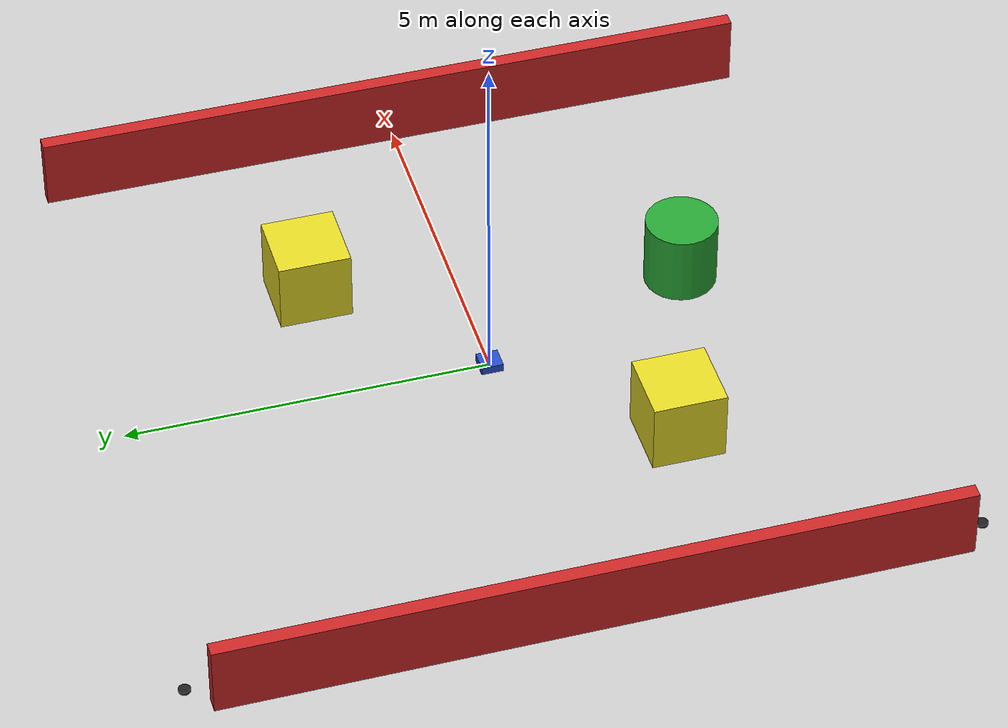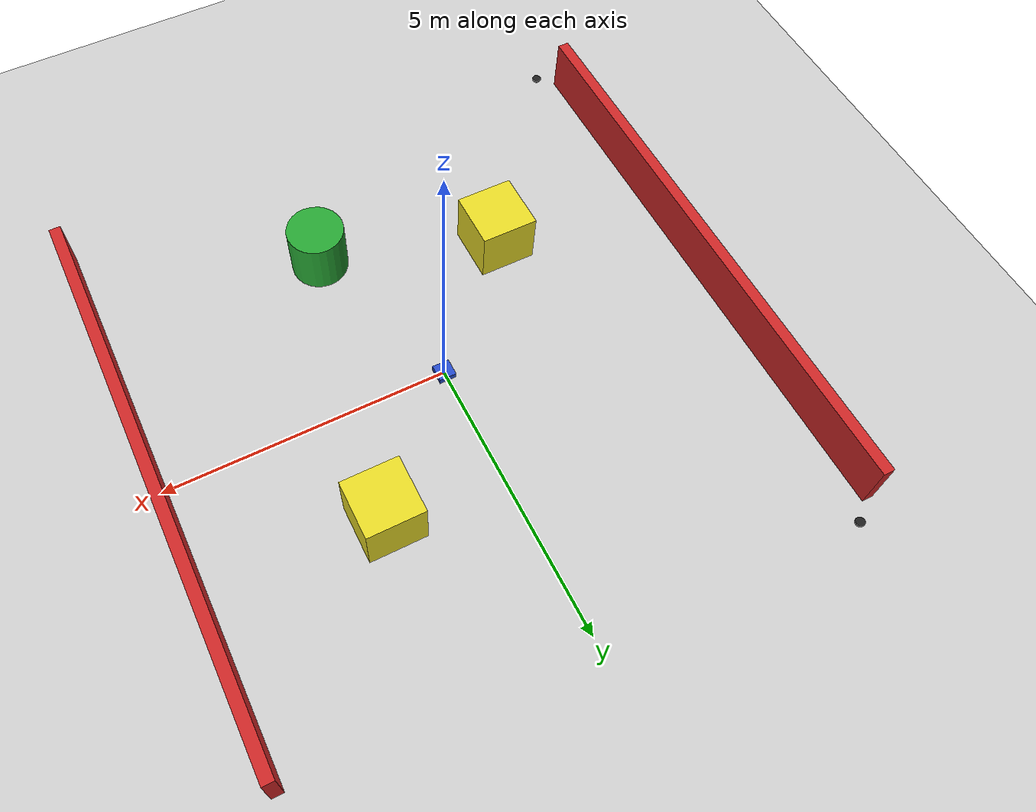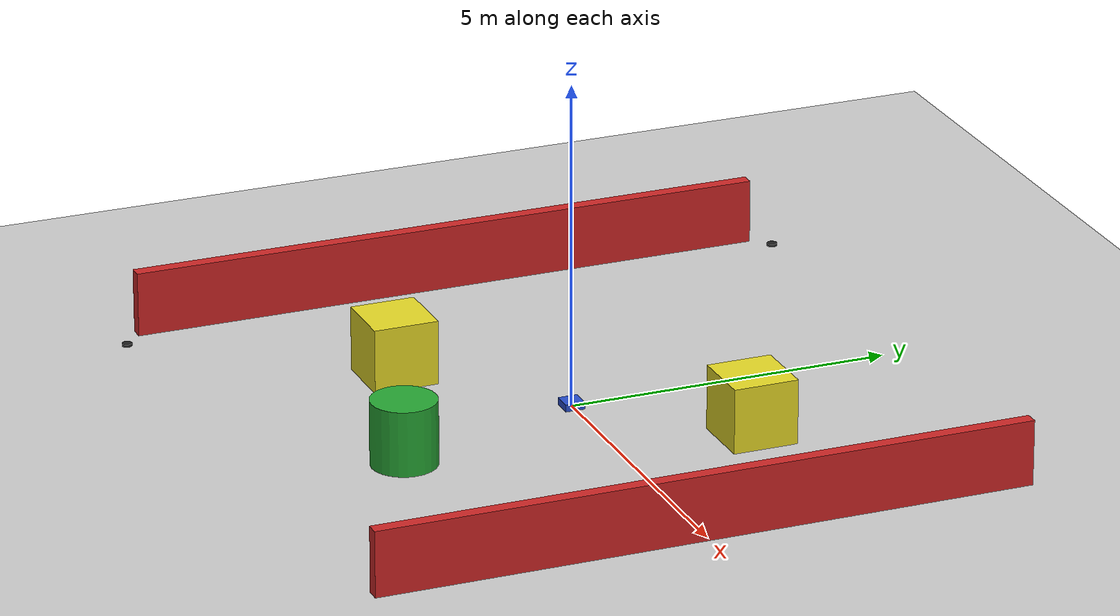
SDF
<?xml version="1.0" ?>
<sdf version="1.6">
  <world name="obstacle_avoidance_world">

    <!-- Physics engine -->
    <physics type="ode">
      <max_step_size>0.001</max_step_size>
      <real_time_factor>1</real_time_factor>
    </physics>

    <!-- Light source -->
    <light type="directional" name="sun">
      <cast_shadows>true</cast_shadows>
      <pose frame="">0 0 10 0 0 0</pose>
      <diffuse>0.8 0.8 0.8 1</diffuse>
      <specular>0.2 0.2 0.2 1</specular>
      <attenuation>
        <range>1000</range>
        <constant>0.9</constant>
        <linear>0.01</linear>
        <quadratic>0.001</quadratic>
      </attenuation>
      <direction>-0.5 0.1 -0.9</direction>
    </light>

    <!-- Ground plane -->
    <model name="ground_plane">
      <static>true</static>
      <link name="link">
        <collision name="collision">
          <geometry>
            <plane>
              <normal>0 0 1</normal>
              <size>100 100</size>
            </plane>
          </geometry>
        </collision>
        <visual name="visual">
          <geometry>
            <plane>
              <normal>0 0 1</normal>
              <size>100 100</size>
            </plane>
          </geometry>
          <material>
            <script>
              <uri>file://media/materials/scripts/gazebo.material</uri>
              <name>Gazebo/Grey</name>
            </script>
          </material>
        </visual>
      </link>
    </model>

    <!-- Simple robot with lidar (point at 0,0,0.2m) -->
    <model name="mobile_robot">
      <pose frame="">0 0 0 0 0 0</pose>
      <link name="base_link">
        <inertial>
          <mass>10.0</mass>
          <inertia>
            <ixx>0.1</ixx>
            <ixy>0</ixy>
            <ixz>0</ixz>
            <iyy>0.1</iyy>
            <iyz>0</iyz>
            <izz>0.05</izz>
          </inertia>
        </inertial>

        <!-- Main body -->
        <collision name="body_collision">
          <geometry>
            <box>
              <size>0.3 0.3 0.2</size>
            </box>
          </geometry>
        </collision>
        <visual name="body_visual">
          <geometry>
            <box>
              <size>0.3 0.3 0.2</size>
            </box>
          </geometry>
          <material>
            <script>
              <uri>file://media/materials/scripts/gazebo.material</uri>
              <name>Gazebo/Blue</name>
            </script>
          </material>
        </visual>

        <!-- Lidar sensor (Ray sensor for 2D scanning) -->
        <sensor type="ray" name="lidar">
          <pose>0 0 0.15 0 0 0</pose>
          <visualize>true</visualize>
          <update_rate>10</update_rate>
          <ray>
            <scan>
              <horizontal>
                <samples>360</samples>
                <resolution>1</resolution>
                <min_angle>-3.14159</min_angle>
                <max_angle>3.14159</max_angle>
              </horizontal>
            </scan>
            <range>
              <min>0.3</min>
              <max>10</max>
              <resolution>0.01</resolution>
            </range>
            <noise>
              <type>gaussian</type>
              <mean>0</mean>
              <stddev>0.01</stddev>
            </noise>
          </ray>
          <plugin name="gazebo_ros_ray_sensor" filename="libgazebo_ros_ray_sensor.so">
            <ros>
              <remapping>~/out:=scan</remapping>
            </ros>
            <output_type>sensor_msgs/LaserScan</output_type>
            <frame_name>lidar_link</frame_name>
          </plugin>
        </sensor>
      </link>

      <!-- Drive wheels (simplified differential drive) -->
      <joint name="left_wheel_joint" type="revolute">
        <parent>base_link</parent>
        <child>left_wheel</child>
        <axis>
          <xyz>0 1 0</xyz>
        </axis>
        <limit>
          <effort>10</effort>
          <velocity>2</velocity>
        </limit>
      </joint>
      <link name="left_wheel">
        <pose relative_to="left_wheel_joint">-0.15 0.17 0 0 0 0</pose>
        <inertial>
          <mass>1</mass>
          <inertia>
            <ixx>0.01</ixx>
            <ixy>0</ixy>
            <ixz>0</ixz>
            <iyy>0.01</iyy>
            <iyz>0</iyz>
            <izz>0.01</izz>
          </inertia>
        </inertial>
        <collision name="collision">
          <geometry>
            <cylinder>
              <radius>0.08</radius>
              <length>0.05</length>
            </cylinder>
          </geometry>
        </collision>
        <visual name="visual">
          <geometry>
            <cylinder>
              <radius>0.08</radius>
              <length>0.05</length>
            </cylinder>
          </geometry>
          <material>
            <script>
              <uri>file://media/materials/scripts/gazebo.material</uri>
              <name>Gazebo/Black</name>
            </script>
          </material>
        </visual>
      </link>

      <joint name="right_wheel_joint" type="revolute">
        <parent>base_link</parent>
        <child>right_wheel</child>
        <axis>
          <xyz>0 1 0</xyz>
        </axis>
        <limit>
          <effort>10</effort>
          <velocity>2</velocity>
        </limit>
      </joint>
      <link name="right_wheel">
        <pose relative_to="right_wheel_joint">-0.15 -0.17 0 0 0 0</pose>
        <inertial>
          <mass>1</mass>
          <inertia>
            <ixx>0.01</ixx>
            <ixy>0</ixy>
            <ixz>0</ixz>
            <iyy>0.01</iyy>
            <iyz>0</iyz>
            <izz>0.01</izz>
          </inertia>
        </inertial>
        <collision name="collision">
          <geometry>
            <cylinder>
              <radius>0.08</radius>
              <length>0.05</length>
            </cylinder>
          </geometry>
        </collision>
        <visual name="visual">
          <geometry>
            <cylinder>
              <radius>0.08</radius>
              <length>0.05</length>
            </cylinder>
          </geometry>
          <material>
            <script>
              <uri>file://media/materials/scripts/gazebo.material</uri>
              <name>Gazebo/Black</name>
            </script>
          </material>
        </visual>
      </link>

      <!-- Differential drive plugin to convert /cmd_vel to wheel motion -->
      <plugin name="gazebo_ros_diff_drive" filename="libgazebo_ros_diff_drive.so">
        <ros>
          <remapping>cmd_vel:=cmd_vel</remapping>
          <remapping>odom:=odom</remapping>
        </ros>
        <left_joint>left_wheel_joint</left_joint>
        <right_joint>right_wheel_joint</right_joint>
        <wheel_separation>0.34</wheel_separation>
        <wheel_diameter>0.16</wheel_diameter>
        <max_wheel_torque>10</max_wheel_torque>
        <max_wheel_acceleration>3.0</max_wheel_acceleration>
        <odometry_frame>odom</odometry_frame>
        <robot_base_frame>base_link</robot_base_frame>
        <publish_odom>true</publish_odom>
        <publish_odom_tf>true</publish_odom_tf>
        <odometry_topic>odom</odometry_topic>
        <tf_topic>tf</tf_topic>
      </plugin>
    </model>

    <!-- Wall obstacles -->
    <model name="wall_north">
      <static>true</static>
      <pose>5 0 0.5 0 0 0</pose>
      <link name="wall_link">
        <collision name="collision">
          <geometry>
            <box>
              <size>0.2 10 1</size>
            </box>
          </geometry>
        </collision>
        <visual name="visual">
          <geometry>
            <box>
              <size>0.2 10 1</size>
            </box>
          </geometry>
          <material>
            <script>
              <uri>file://media/materials/scripts/gazebo.material</uri>
              <name>Gazebo/Red</name>
            </script>
          </material>
        </visual>
      </link>
    </model>

    <model name="wall_south">
      <static>true</static>
      <pose>-5 0 0.5 0 0 0</pose>
      <link name="wall_link">
        <collision name="collision">
          <geometry>
            <box>
              <size>0.2 10 1</size>
            </box>
          </geometry>
        </collision>
        <visual name="visual">
          <geometry>
            <box>
              <size>0.2 10 1</size>
            </box>
          </geometry>
          <material>
            <script>
              <uri>file://media/materials/scripts/gazebo.material</uri>
              <name>Gazebo/Red</name>
            </script>
          </material>
        </visual>
      </link>
    </model>

    <!-- Random obstacles in the middle -->
    <model name="obstacle_1">
      <static>true</static>
      <pose>2 2 0.5 0 0 0</pose>
      <link name="obstacle_link">
        <collision name="collision">
          <geometry>
            <box>
              <size>1 1 1</size>
            </box>
          </geometry>
        </collision>
        <visual name="visual">
          <geometry>
            <box>
              <size>1 1 1</size>
            </box>
          </geometry>
          <material>
            <script>
              <uri>file://media/materials/scripts/gazebo.material</uri>
              <name>Gazebo/Yellow</name>
            </script>
          </material>
        </visual>
      </link>
    </model>

    <model name="obstacle_2">
      <static>true</static>
      <pose>-2 -2 0.5 0 0 0</pose>
      <link name="obstacle_link">
        <collision name="collision">
          <geometry>
            <box>
              <size>1 1 1</size>
            </box>
          </geometry>
        </collision>
        <visual name="visual">
          <geometry>
            <box>
              <size>1 1 1</size>
            </box>
          </geometry>
          <material>
            <script>
              <uri>file://media/materials/scripts/gazebo.material</uri>
              <name>Gazebo/Yellow</name>
            </script>
          </material>
        </visual>
      </link>
    </model>

    <model name="obstacle_3">
      <static>true</static>
      <pose>1 -3 0.5 0 0 0</pose>
      <link name="obstacle_link">
        <collision name="collision">
          <geometry>
            <cylinder>
              <radius>0.5</radius>
              <length>1</length>
            </cylinder>
          </geometry>
        </collision>
        <visual name="visual">
          <geometry>
            <cylinder>
              <radius>0.5</radius>
              <length>1</length>
            </cylinder>
          </geometry>
          <material>
            <script>
              <uri>file://media/materials/scripts/gazebo.material</uri>
              <name>Gazebo/Green</name>
            </script>
          </material>
        </visual>
      </link>
    </model>

  </world>
</sdf>
